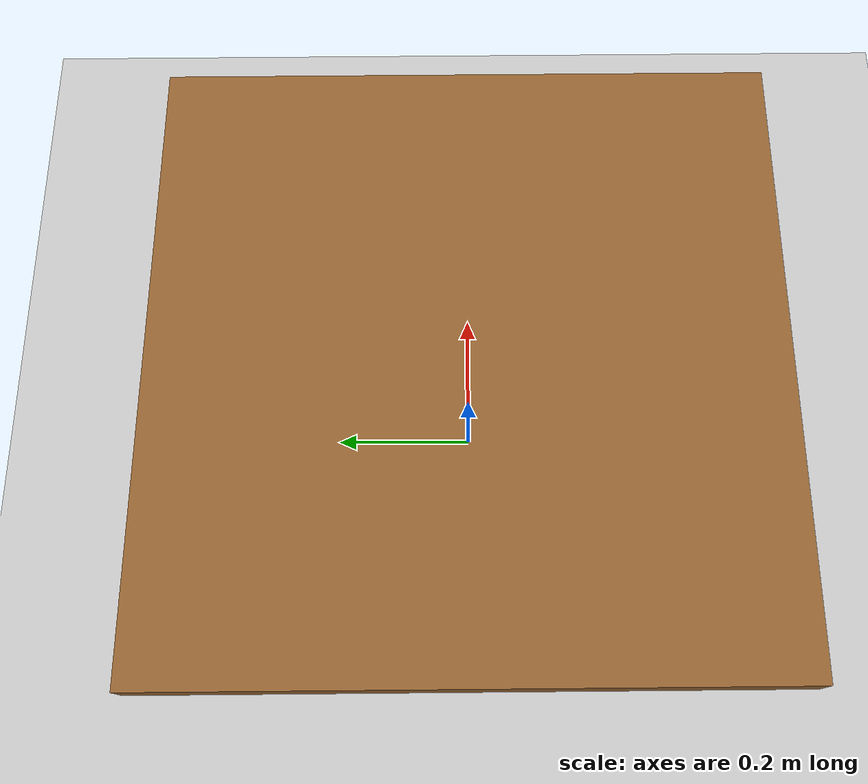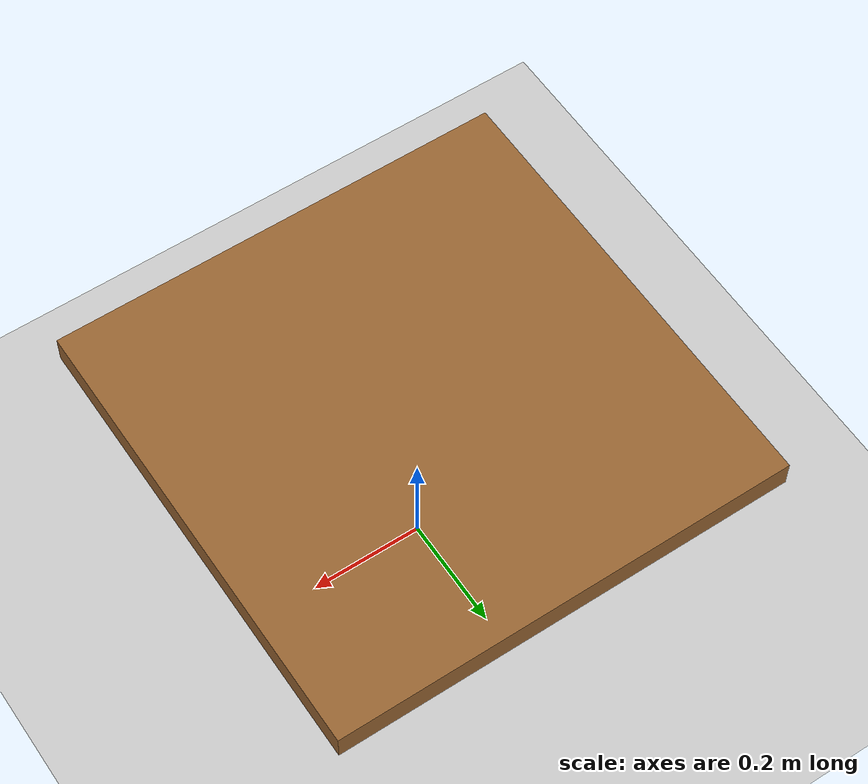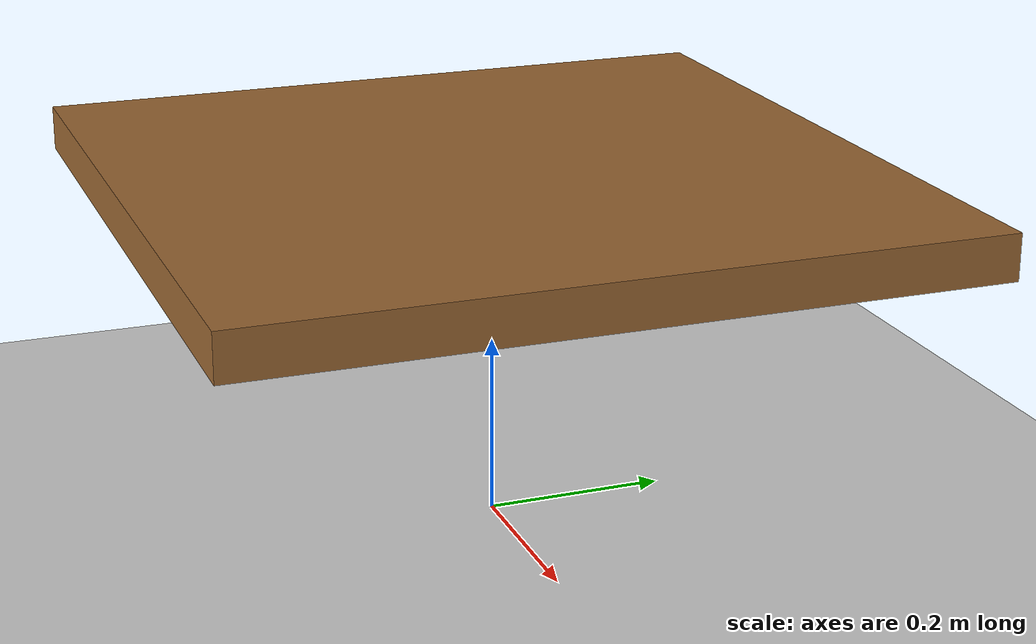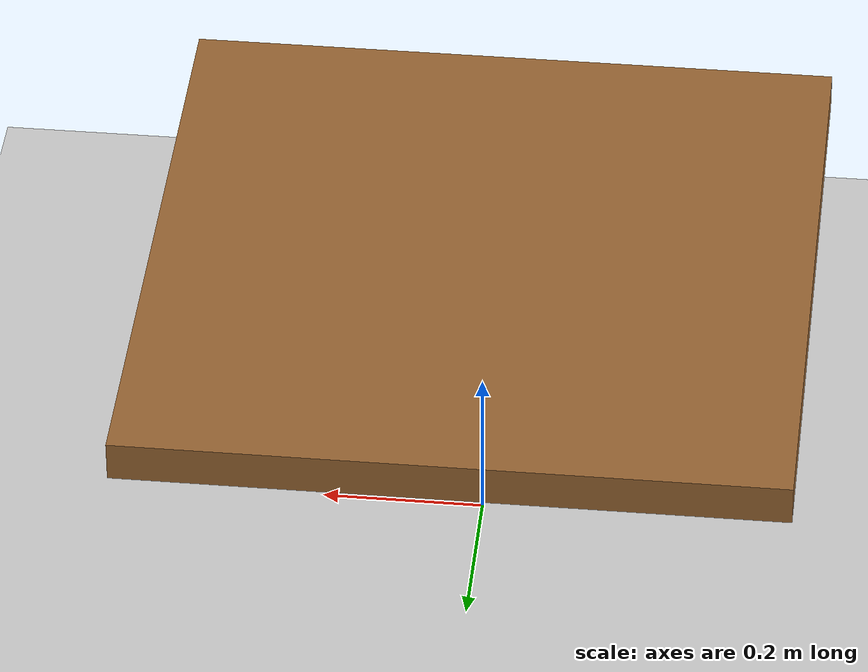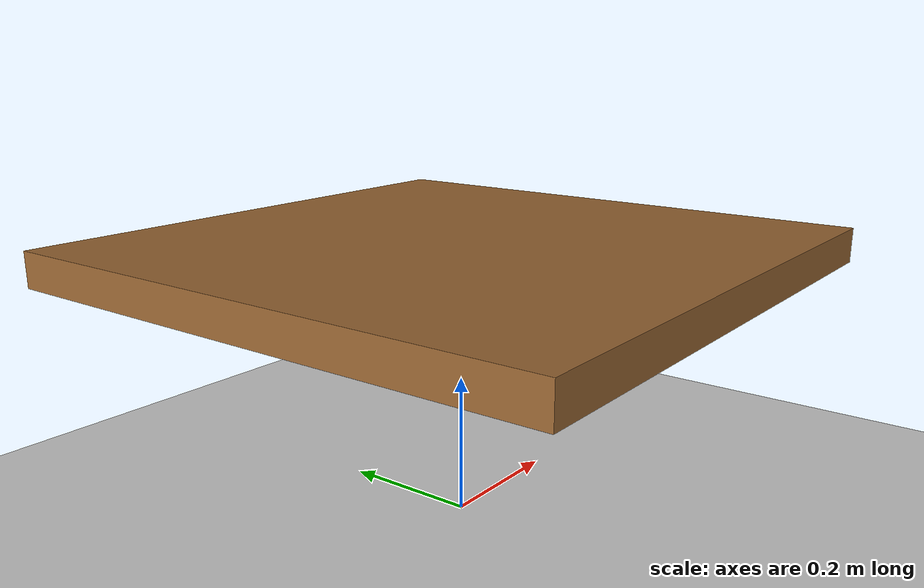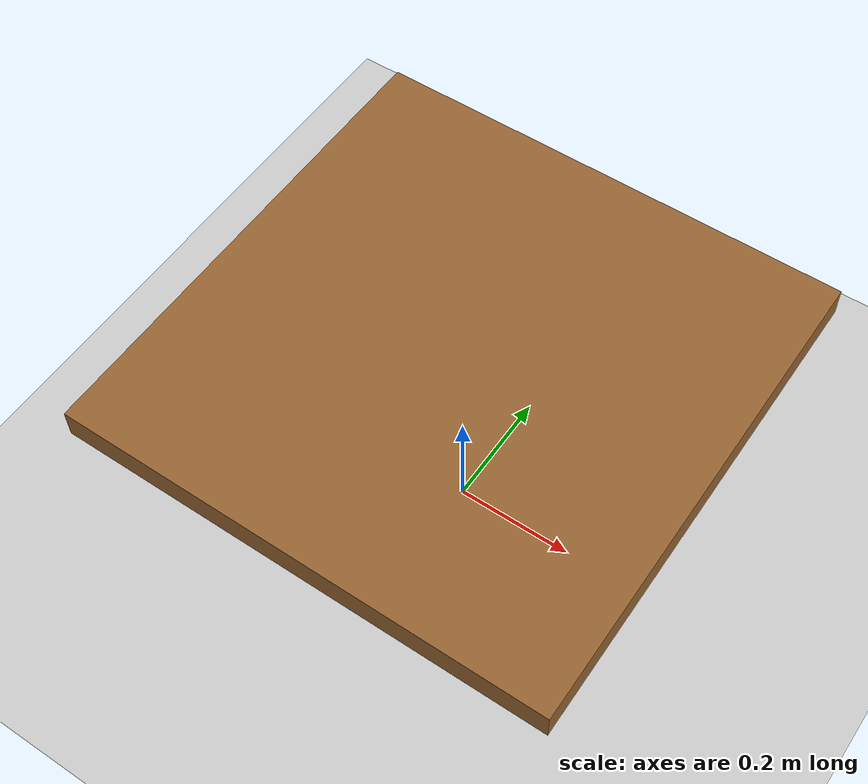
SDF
<?xml version="1.0" ?>
<sdf version="1.7">
  <world name="scara_world">

    <!-- Physics -->
    <physics name="1ms" type="ignored">
      <max_step_size>0.001</max_step_size>
      <real_time_factor>1</real_time_factor>
    </physics>

    <!-- Plugins -->
    <plugin filename="gz-sim-physics-system"
            name="gz::sim::systems::Physics"/>
    <plugin filename="gz-sim-user-commands-system"
            name="gz::sim::systems::UserCommands"/>
    <plugin filename="gz-sim-scene-broadcaster-system"
            name="gz::sim::systems::SceneBroadcaster"/>
    <plugin filename="gz-sim-contact-system"
            name="gz::sim::systems::Contact"/>

    <!-- Sun light -->
    <light type="directional" name="sun">
      <cast_shadows>true</cast_shadows>
      <pose>0 0 10 0 0 0</pose>
      <diffuse>0.8 0.8 0.8 1</diffuse>
      <specular>0.2 0.2 0.2 1</specular>
      <attenuation>
        <range>1000</range>
        <constant>0.9</constant>
        <linear>0.01</linear>
        <quadratic>0.001</quadratic>
      </attenuation>
      <direction>-0.5 0.1 -0.9</direction>
    </light>

    <!-- Ground plane -->
    <model name="ground_plane">
      <static>true</static>
      <link name="link">
        <collision name="collision">
          <geometry>
            <plane>
              <normal>0 0 1</normal>
              <size>10 10</size>
            </plane>
          </geometry>
        </collision>
        <visual name="visual">
          <geometry>
            <plane>
              <normal>0 0 1</normal>
              <size>10 10</size>
            </plane>
          </geometry>
          <material>
            <ambient>0.8 0.8 0.8 1</ambient>
            <diffuse>0.8 0.8 0.8 1</diffuse>
          </material>
        </visual>
      </link>
    </model>

    <!-- Worktable for SCARA -->
    <model name="worktable">
      <static>true</static>
      <pose>0 0 0.375 0 0 0</pose>
      <link name="table_top">
        <collision name="collision">
          <geometry>
            <box><size>0.8 0.8 0.05</size></box>
          </geometry>
        </collision>
        <visual name="visual">
          <geometry>
            <box><size>0.8 0.8 0.05</size></box>
          </geometry>
          <material>
            <ambient>0.6 0.4 0.2 1</ambient>
            <diffuse>0.6 0.4 0.2 1</diffuse>
          </material>
        </visual>
      </link>
    </model>

  </world>
</sdf>
